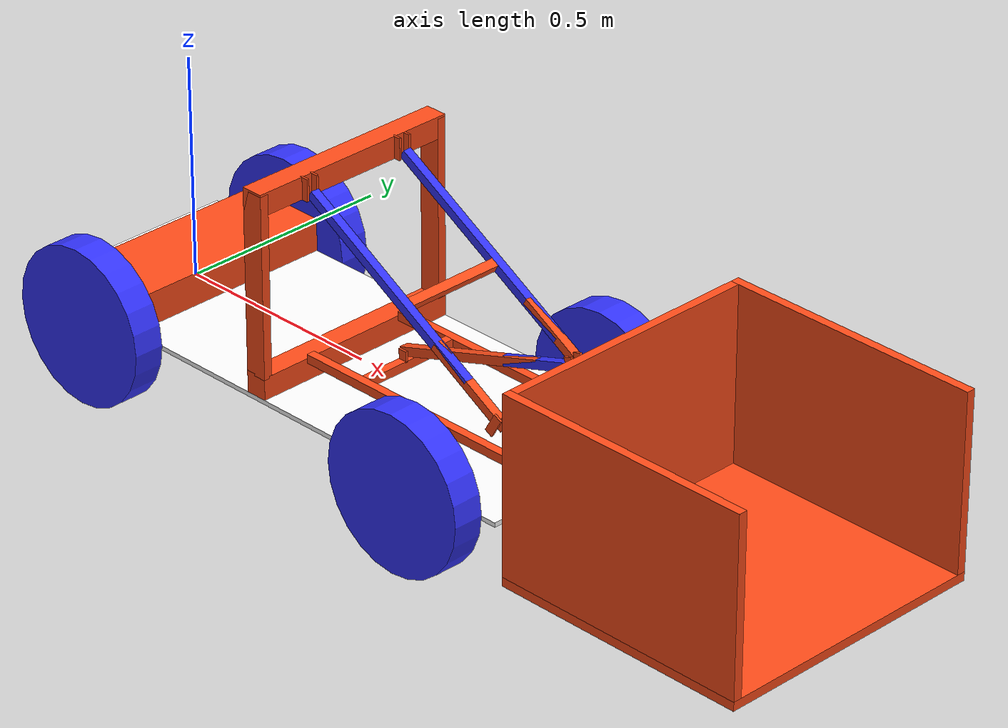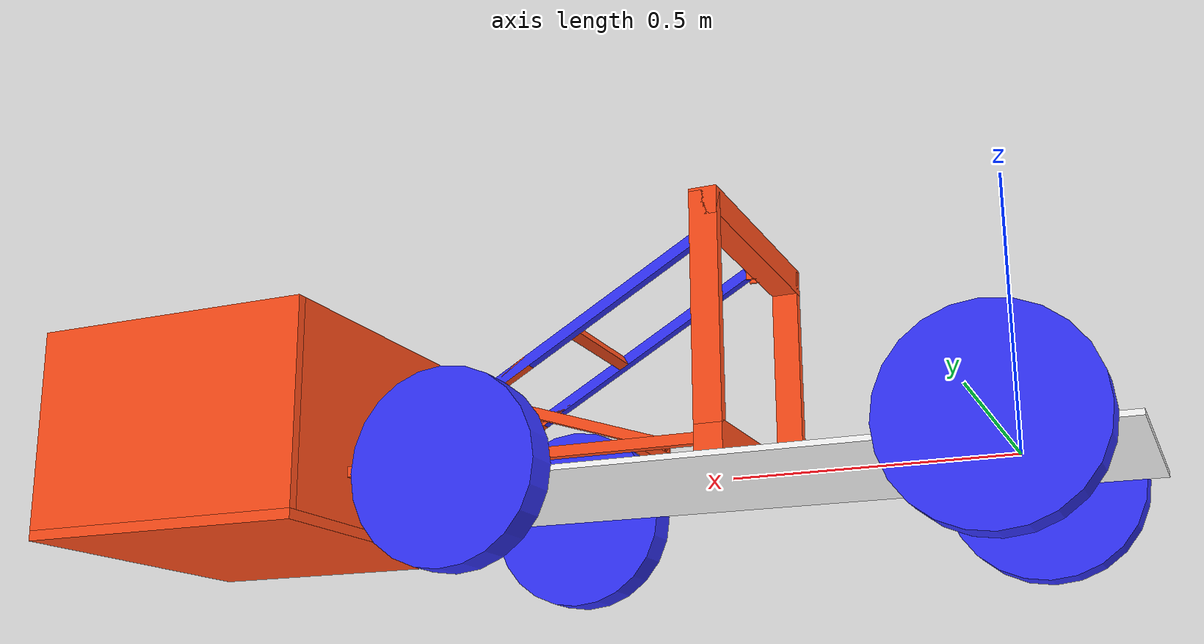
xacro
<?xml version="1.0"?>
<robot xmlns:xacro="http://www.ros.org/wiki/xacro"  name="robot">

    <xacro:include filename="robot_core.xacro" />
    <xacro:include filename="brackets.xacro" />
    <xacro:include filename="lifting_actuation.xacro" />
    <xacro:include filename="tilting_actuation.xacro" />

    <xacro:include filename="gazebo_control.xacro" />
    <!-- xacro:include filename="depth_camera.xacro" -->

</robot>

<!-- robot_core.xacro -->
<robot xmlns:xacro="http://www.ros.org/wiki/xacro" >

    <xacro:include filename="inertial_macros.xacro"/>

    <xacro:property name="chassis_length" value="1.35" />
    <xacro:property name="chassis_width" value="0.5" />
    <xacro:property name="chassis_height" value="0.01" />
    <xacro:property name="chassis_mass" value="1.0" />
    <xacro:property name="wheel_radius" value="0.1778" />
    <xacro:property name="wheel_thickness" value="0.07" />
    <xacro:property name="wheel_mass" value="0.05" />
    <xacro:property name="wheel_offset_x" value="0.2135" />
    <xacro:property name="wheel_offset_y" value="0.285" />
    <xacro:property name="wheel_offset_z" value="0.01" />
    <xacro:property name="caster_wheel_radius" value="0.1778"/>
    <xacro:property name="caster_wheel_mass" value="0.01"/>
    <xacro:property name="caster_wheel_offset_x" value="1.1365" />

    <material name="white">
        <color rgba="1 1 1 1" />
    </material>

    <material name="orange">
        <color rgba="1 0.3 0.1 1"/>
    </material>

    <material name="blue">
        <color rgba="0.2 0.2 1 1"/>
    </material>

    <material name="black">
        <color rgba="0 0 0 1"/>
    </material>

    <material name="red">
        <color rgba="1 0 0 1"/>
    </material>

    <!-- BASE LINK -->

    <link name="base_link">

    </link>

    <!-- BASE_FOOTPRINT LINK -->

    <joint name="base_footprint_joint" type="fixed">
    	<parent link="base_link"/>
    	<child link="base_footprint"/>
    	<origin xyz="0 0 0" rpy="0 0 0"/>
    </joint>

    <link name="base_footprint">
    </link>

    <!-- CHASSIS LINK -->

    <joint name="chassis_joint" type="fixed">
        <parent link="base_link"/>
        <child link="chassis"/>
        <origin xyz="${-wheel_offset_x} 0 ${-wheel_offset_z}"/>
    </joint>

    <link name="chassis">
        <visual>
            <origin xyz="${chassis_length/2} 0 ${chassis_height/2}"/>
            <geometry>
                <box size="${chassis_length} ${chassis_width} ${chassis_height}"/>
            </geometry>
            <material name="white"/>
        </visual>
        <collision>
            <origin xyz="${chassis_length/2} 0 ${chassis_height/2}"/>
            <geometry>
                <box size="${chassis_length} ${chassis_width} ${chassis_height}"/>
            </geometry>
        </collision>
        <xacro:inertial_box mass="0.5" x="${chassis_length}" y="${chassis_width}" z="${chassis_height}">
            <origin xyz="${chassis_length/2} 0 ${chassis_height/2}" rpy="0 0 0"/>
        </xacro:inertial_box>
    </link>

    <gazebo reference="chassis">
        <material>Gazebo/White</material>
    </gazebo>

    <!-- BACK LEFT WHEEL LINK -->

    <joint name="left_wheel_joint" type="continuous">
        <parent link="base_link"/>
        <child link="left_wheel"/>
        <origin xyz="0  ${wheel_offset_y} 0" rpy="-${pi/2} 0 0" />
        <axis xyz="0 0 1"/>
    </joint>

    <link name="left_wheel">
        <visual>
            <geometry>
                <cylinder radius="${wheel_radius}" length="0.07"/>
            </geometry>
            <material name="blue"/>
        </visual>
        <collision>
            <geometry>
                <sphere radius="${wheel_radius}"/>
            </geometry>
        </collision>
        <xacro:inertial_cylinder mass="${wheel_mass}" length="${wheel_thickness}" radius="${wheel_radius}">
            <origin xyz="0 0 0" rpy="0 0 0"/>
        </xacro:inertial_cylinder>
    </link>

    <gazebo reference="left_wheel">
        <material>Gazebo/Blue</material>
    </gazebo>

    <!-- BACK RIGHT WHEEL LINK -->

    <joint name="right_wheel_joint" type="continuous">
        <parent link="base_link"/>
        <child link="right_wheel"/>
        <origin xyz="0 ${-wheel_offset_y} 0" rpy="${pi/2} 0 0" />
        <axis xyz="0 0 -1"/>
    </joint>

    <link name="right_wheel">
        <visual>
            <geometry>
                <cylinder radius="${wheel_radius}" length="${wheel_thickness}"/>
            </geometry>
            <material name="blue"/>
        </visual>
        <collision>
            <geometry>
                <sphere radius="${wheel_radius}"/>
            </geometry>
        </collision>
        <xacro:inertial_cylinder mass="${wheel_mass}" length="${wheel_thickness}" radius="${wheel_radius}">
            <origin xyz="0 0 0" rpy="0 0 0"/>
        </xacro:inertial_cylinder>
    </link>

    <gazebo reference="right_wheel">
        <material>Gazebo/Blue</material>
    </gazebo>

    <!-- FRONT LEFT WHEEL LINK -->

    <joint name="front_left_wheel_joint" type="fixed">
        <parent link="chassis"/>
        <child link="front_left_wheel"/>
        <origin xyz="${caster_wheel_offset_x} ${wheel_offset_y} ${wheel_offset_z}" rpy="-${pi/2} 0 0" />
        <axis xyz="0 0 1"/>
    </joint>

    <link name="front_left_wheel">
        <visual>
            <geometry>
                <cylinder radius="${caster_wheel_radius}" length="${wheel_thickness}"/>
            </geometry>
            <material name="blue"/>
        </visual>
        <collision>
            <geometry>
                <sphere radius="${caster_wheel_radius}"/>
            </geometry>
        </collision>
        <xacro:inertial_cylinder mass="${caster_wheel_mass}" length="${wheel_thickness}" radius="${caster_wheel_radius}">
            <origin xyz="0 0 0" rpy="0 0 0"/>
        </xacro:inertial_cylinder>
    </link>

    <gazebo reference="front_left_wheel">
        <material>Gazebo/Blue</material>
        <mu1 value="0.001"/>
        <mu2 value="0.001"/>
    </gazebo>

    <!-- FRONT RIGHT WHEEL LINK -->

    <joint name="front_right_wheel_joint" type="fixed">
        <parent link="chassis"/>
        <child link="front_right_wheel"/>
        <origin xyz="${caster_wheel_offset_x} ${-wheel_offset_y} ${wheel_offset_z}" rpy="${pi/2} 0 0" />
        <axis xyz="0 0 -1"/>
    </joint>

    <link name="front_right_wheel">
        <visual>
            <geometry>
                <cylinder radius="${caster_wheel_radius}" length="${wheel_thickness}"/>
            </geometry>
            <material name="blue"/>
        </visual>
        <collision>
            <geometry>
                <sphere radius="${caster_wheel_radius}"/>
            </geometry>
        </collision>
        <xacro:inertial_cylinder mass="${caster_wheel_mass}" length="${wheel_thickness}" radius="${caster_wheel_radius}">
            <origin xyz="0 0 0" rpy="0 0 0"/>
        </xacro:inertial_cylinder>
    </link>

    <gazebo reference="front_right_wheel">
        <material>Gazebo/Blue</material>
        <mu1 value="0.001"/>
        <mu2 value="0.001"/>
    </gazebo>

    <!-- TOWER -->
    <!-- Needs to be 0.510m tall -->

    <joint name="tower" type="fixed">
        <parent link="base_link"/>
        <child link="tower"/>
        <origin xyz="0.4615 0 0"/>
    </joint>

    <link name="tower">
        <visual>
            <origin xyz="0 0 0.025"/>
            <geometry>
                <box size="0.05 0.5 0.05"/>
            </geometry>
            <material name="orange"/>
        </visual>
        <collision>
            <origin xyz="0 0 0.025"/>
            <geometry>
                <box size="0.05 0.5 0.05"/>
            </geometry>
        </collision>
        <xacro:inertial_box mass="0.5" x="0.05" y="0.5" z="0.05">
            <origin xyz="0 0 0.025" rpy="0 0 0"/>
        </xacro:inertial_box>
    </link>

    <gazebo reference="tower">
        <material>Gazebo/White</material>
    </gazebo>

    <!-- MOTOR AND GEARBOX LINK -->

    <joint name="motor_joint" type="fixed">
        <parent link="base_link"/>
        <child link="motor"/>
        <origin xyz="0 0 0"/>
    </joint>

    <link name="motor">
        <visual>
            <origin xyz="0 0 0.0375"/>
            <geometry>
                <box size="0.2 0.5 0.075"/>
            </geometry>
            <material name="orange"/>
        </visual>
        <collision>
            <origin xyz="0 0 0.0375"/>
            <geometry>
                <box size="0.2 0.5 0.075"/>
            </geometry>
        </collision>
        <xacro:inertial_box mass="1.5" x="0.2" y="0.5" z="0.075">
            <origin xyz="0 0 0.0375" rpy="0 0 0"/>
        </xacro:inertial_box>
    </link>

    <gazebo reference="motor">
        <material>Gazebo/Orange</material>
    </gazebo>

    <!-- TOWER HEIGHT LEFT -->
    <!-- Needs to be 0.510m tall -->

    <joint name="tower_up_left" type="fixed">
        <parent link="base_link"/>
        <child link="tower_up_left"/>
        <origin xyz="0.4615 0 0"/>
    </joint>

    <link name="tower_up_left">
        <visual>
            <origin xyz="0 -0.24 0.25"/>
            <geometry>
                <box size="0.05 0.02 0.410"/>
            </geometry>
            <material name="orange"/>
        </visual>
        <collision>
            <origin xyz="0 -0.24 0.25"/>
            <geometry>
                <box size="0.05 0.02 0.410"/>
            </geometry>
        </collision>
        <xacro:inertial_box mass="0.5" x="0.05" y="0.02" z="0.410">
            <origin xyz="0 -0.24 0.25" rpy="0 0 0"/>
        </xacro:inertial_box>
    </link>

    <!-- TOWER HEIGHT RIGHT-->
    <!-- Needs to be 0.510m tall -->

    <joint name="tower_up_right" type="fixed">
        <parent link="base_link"/>
        <child link="tower_up_right"/>
        <origin xyz="0.4615 0 0"/>
    </joint>

    <link name="tower_up_right">
        <visual>
            <origin xyz="0 0.24 0.25"/>
            <geometry>
                <box size="0.05 0.02 0.410"/>
            </geometry>
            <material name="orange"/>
        </visual>
        <collision>
            <origin xyz="0 0.24 0.25"/>
            <geometry>
                <box size="0.05 0.02 0.410"/>
            </geometry>
        </collision>
        <xacro:inertial_box mass="0.5" x="0.05" y="0.02" z="0.410">
            <origin xyz="0 0.24 0.25" rpy="0 0 0"/>
        </xacro:inertial_box>
    </link>

    <!-- TOWER TOP -->
    <!-- Needs to be 0.510m tall -->

    <joint name="tower_top" type="fixed">
        <parent link="base_link"/>
        <child link="tower_top"/>
        <origin xyz="0.4615 0 0"/>
    </joint>

    <link name="tower_top">
        <visual>
            <origin xyz="0 0 0.435"/>
            <geometry>
                <box size="0.05 0.5 0.05"/>
            </geometry>
            <material name="orange"/>
        </visual>
        <collision>
            <origin xyz="0 0 0.435"/>
            <geometry>
                <box size="0.05 0.5 0.05"/>
            </geometry>
        </collision>
        <xacro:inertial_box mass="0.5" x="0.05" y="0.5" z="0.05">
            <origin xyz="0 0 0.435" rpy="0 0 0"/>
        </xacro:inertial_box>
    </link>

</robot>

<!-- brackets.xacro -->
<robot xmlns:xacro="http://www.ros.org/wiki/xacro" >

    <xacro:include filename="inertial_macros.xacro"/>

    <!-- ANGLING BRACKETS -->
    <!-- SET 1 -->
    <joint name="tower_left_bracket" type="fixed">
        <parent link="tower_top"/>
        <child link="tower_top_left"/>
        <origin xyz="0.03 0.1375 0.435"/>
    </joint>

    <link name="tower_top_left">
        <visual>
            <origin xyz="0 0 0"/>
            <geometry>
                <box size="0.02 0.005 0.05"/>
            </geometry>
            <material name="orange"/>
        </visual>
        <collision>
            <origin xyz="0 0 0"/>
            <geometry>
                <box size="0.02 0.005 0.05"/>
            </geometry>
        </collision>
        <xacro:inertial_box mass="0.5" x="0.02" y="0.005" z="0.05">
            <origin xyz="0 0 0" rpy="0 0 0"/>
        </xacro:inertial_box>
    </link>

    <gazebo reference="tower_left_bracket">
        <material>Gazebo/Orange</material>
    </gazebo>

    <joint name="tower_right_bracket" type="fixed">
        <parent link="tower_top"/>
        <child link="tower_top_right"/>
        <origin xyz="0.03 0.1125 0.435"/>
    </joint>

    <link name="tower_top_right">
        <visual>
            <origin xyz="0 0 0"/>
            <geometry>
                <box size="0.02 0.005 0.05"/>
            </geometry>
            <material name="orange"/>
        </visual>
        <collision>
            <origin xyz="0 0 0"/>
            <geometry>
                <box size="0.02 0.005 0.05"/>
            </geometry>
        </collision>
        <xacro:inertial_box mass="0.5" x="0.02" y="0.005" z="0.05">
            <origin xyz="0 0 0" rpy="0 0 0"/>
        </xacro:inertial_box>
    </link>
    <gazebo reference="tower_right_bracket">
        <material>Gazebo/Orange</material>
    </gazebo>

    <!-- SET 2 -->
    <joint name="tower_left_bracket2" type="fixed">
        <parent link="tower_top"/>
        <child link="tower_top_left2"/>
        <origin xyz="0.03 -0.1375 0.435"/>
    </joint>

    <link name="tower_top_left2">
        <visual>
            <origin xyz="0 0 0"/>
            <geometry>
                <box size="0.02 0.005 0.05"/>
            </geometry>
            <material name="orange"/>
        </visual>
        <collision>
            <origin xyz="0 0 0"/>
            <geometry>
                <box size="0.02 0.005 0.05"/>
            </geometry>
        </collision>
        <xacro:inertial_box mass="0.5" x="0.02" y="0.005" z="0.05">
            <origin xyz="0 0 0" rpy="0 0 0"/>
        </xacro:inertial_box>
    </link>
    <gazebo reference="tower_left_bracket2">
        <material>Gazebo/Orange</material>
    </gazebo>

    <joint name="tower_right_bracket2" type="fixed">
        <parent link="tower_top"/>
        <child link="tower_top_right2"/>
        <origin xyz="0.03 -0.1125 0.435"/>
    </joint>

    <link name="tower_top_right2">
        <visual>
            <origin xyz="0 0 0"/>
            <geometry>
                <box size="0.02 0.005 0.05"/>
            </geometry>
            <material name="orange"/>
        </visual>
        <collision>
            <origin xyz="0 0 0"/>
            <geometry>
                <box size="0.02 0.005 0.05"/>
            </geometry>
        </collision>
        <xacro:inertial_box mass="0.5" x="0.02" y="0.005" z="0.05">
            <origin xyz="0 0 0" rpy="0 0 0"/>
        </xacro:inertial_box>
    </link>

    <gazebo reference="tower_right_bracket2">
        <material>Gazebo/Orange</material>
    </gazebo>

    <!-- ANGLING BRACKETS -->
    <!-- SET 3 -->
    <joint name="act_left_bracket" type="fixed">
        <parent link="lifting_left_link"/>
        <child link="act_left"/>
        <origin xyz="0.1 0.0125 -0.0055"/>
    </joint>

    <link name="act_left">
        <visual>
            <origin xyz="0 0 0"/>
            <geometry>
                <box size="0.02 0.005 0.05"/>
            </geometry>
            <material name="orange"/>
        </visual>
        <collision>
            <origin xyz="0 0 0"/>
            <geometry>
                <box size="0.02 0.005 0.05"/>
            </geometry>
        </collision>
        <xacro:inertial_box mass="0.5" x="0.02" y="0.005" z="0.05">
            <origin xyz="0 0 0" rpy="0 0 0"/>
        </xacro:inertial_box>
    </link>

    <gazebo reference="act_left_bracket">
        <material>Gazebo/Orange</material>
    </gazebo>

    <joint name="act_right_bracket" type="fixed">
        <parent link="lifting_left_link"/>
        <child link="act_right"/>
        <origin xyz="0.1 -0.0125 -0.0055"/>
    </joint>

    <link name="act_right">
        <visual>
            <origin xyz="0 0 0"/>
            <geometry>
                <box size="0.02 0.005 0.05"/>
            </geometry>
            <material name="orange"/>
        </visual>
        <collision>
            <origin xyz="0 0 0"/>
            <geometry>
                <box size="0.02 0.005 0.05"/>
            </geometry>
        </collision>
        <xacro:inertial_box mass="0.5" x="0.02" y="0.005" z="0.05">
            <origin xyz="0 0 0" rpy="0 0 0"/>
        </xacro:inertial_box>
    </link>
    <gazebo reference="act_right_bracket">
        <material>Gazebo/Orange</material>
    </gazebo>

    <!-- SET 4 -->
    <joint name="act_left_bracket2" type="fixed">
        <parent link="lifting_right_link"/>
        <child link="act_left2"/>
        <origin xyz="0.1 0.0125 -0.0055"/>
    </joint>

    <link name="act_left2">
        <visual>
            <origin xyz="0 0 0"/>
            <geometry>
                <box size="0.02 0.005 0.05"/>
            </geometry>
            <material name="orange"/>
        </visual>
        <collision>
            <origin xyz="0 0 0"/>
            <geometry>
                <box size="0.02 0.005 0.05"/>
            </geometry>
        </collision>
        <xacro:inertial_box mass="0.5" x="0.02" y="0.005" z="0.05">
            <origin xyz="0 0 0" rpy="0 0 0"/>
        </xacro:inertial_box>
    </link>
    <gazebo reference="act_left_bracket2">
        <material>Gazebo/Orange</material>
    </gazebo>

    <joint name="act_right_bracket2" type="fixed">
        <parent link="lifting_right_link"/>
        <child link="act_right2"/>
        <origin xyz="0.1 -0.0125 -0.0055"/>
    </joint>

    <link name="act_right2">
        <visual>
            <origin xyz="0 0 0"/>
            <geometry>
                <box size="0.02 0.005 0.05"/>
            </geometry>
            <material name="orange"/>
        </visual>
        <collision>
            <origin xyz="0 0 0"/>
            <geometry>
                <box size="0.02 0.005 0.05"/>
            </geometry>
        </collision>
        <xacro:inertial_box mass="0.5" x="0.02" y="0.005" z="0.05">
            <origin xyz="0 0 0" rpy="0 0 0"/>
        </xacro:inertial_box>
    </link>

    <gazebo reference="act_right_bracket2">
        <material>Gazebo/Orange</material>
    </gazebo>

    <!-- ANGLING BRACKETS -->
    <!-- SET 5 -->
    <joint name="bottom_left_bracket" type="fixed">
        <parent link="arm_link"/>
        <child link="bottom_left"/>
        <origin xyz="0 0.0125 0.02"/>
    </joint>

    <link name="bottom_left">
        <visual>
            <origin xyz="0 0 0"/>
            <geometry>
                <box size="0.02 0.005 0.025"/>
            </geometry>
            <material name="orange"/>
        </visual>
        <collision>
            <origin xyz="0 0 0"/>
            <geometry>
                <box size="0.02 0.005 0.025"/>
            </geometry>
        </collision>
        <xacro:inertial_box mass="0.5" x="0.02" y="0.005" z="0.025">
            <origin xyz="0 0 0" rpy="0 0 0"/>
        </xacro:inertial_box>
    </link>

    <gazebo reference="bottom_left_bracket">
        <material>Gazebo/Orange</material>
    </gazebo>

    <joint name="bottom_right_bracket" type="fixed">
        <parent link="arm_link"/>
        <child link="bottom_right"/>
        <origin xyz="0 -0.0125 0.02"/>
    </joint>

    <link name="bottom_right">
        <visual>
            <origin xyz="0 0 0"/>
            <geometry>
                <box size="0.02 0.005 0.025"/>
            </geometry>
            <material name="orange"/>
        </visual>
        <collision>
            <origin xyz="0 0 0"/>
            <geometry>
                <box size="0.02 0.005 0.025"/>
            </geometry>
        </collision>
        <xacro:inertial_box mass="0.5" x="0.02" y="0.005" z="0.025">
            <origin xyz="0 0 0" rpy="0 0 0"/>
        </xacro:inertial_box>
    </link>

    <gazebo reference="bottom_right_bracket">
        <material>Gazebo/Orange</material>
    </gazebo>

    <!-- SET 6 -->
    <joint name="tilt_left_bracket" type="fixed">
        <parent link="tilting_link"/>
        <child link="tilt_left"/>
        <origin xyz="0.1 0.0125 0"/>
    </joint>

    <link name="tilt_left">
        <visual>
            <origin xyz="0 0 0"/>
            <geometry>
                <box size="0.02 0.005 0.05"/>
            </geometry>
            <material name="orange"/>
        </visual>
        <collision>
            <origin xyz="0 0 0"/>
            <geometry>
                <box size="0.02 0.005 0.05"/>
            </geometry>
        </collision>
        <xacro:inertial_box mass="0.5" x="0.02" y="0.005" z="0.05">
            <origin xyz="0 0 0" rpy="0 0 0"/>
        </xacro:inertial_box>
    </link>
    <gazebo reference="tilt_left">
        <material>Gazebo/Orange</material>
    </gazebo>

    <joint name="tilt_right_bracket" type="fixed">
        <parent link="tilting_link"/>
        <child link="tilt_right"/>
        <origin xyz="0.1 -0.0125 0"/>
    </joint>

    <link name="tilt_right">
        <visual>
            <origin xyz="0 0 0"/>
            <geometry>
                <box size="0.02 0.005 0.05"/>
            </geometry>
            <material name="orange"/>
        </visual>
        <collision>
            <origin xyz="0 0 0"/>
            <geometry>
                <box size="0.02 0.005 0.05"/>
            </geometry>
        </collision>
        <xacro:inertial_box mass="0.5" x="0.02" y="0.005" z="0.05">
            <origin xyz="0 0 0" rpy="0 0 0"/>
        </xacro:inertial_box>
    </link>

    <gazebo reference="tilt_right">
        <material>Gazebo/Orange</material>
    </gazebo>

</robot>

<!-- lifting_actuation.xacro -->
<robot xmlns:xacro="http://www.ros.org/wiki/xacro" >

    <xacro:include filename="inertial_macros.xacro"/>

    <!-- LIFTING ACTUATOR LEFT -->
    <xacro:property name="actuator_fixed_length" value="0.5" />
    <xacro:property name="actuator_extension_length" value="0.2" />
    <xacro:property name="actuator_radius" value="0.02" />

    <!-- FIXED PART -->
    <joint name="actuator_left_joint" type="fixed">
        <parent link="left_arm_link"/>
        <child link="actuator_left"/>
        <origin xyz="0.2325 0.125 0.25" rpy="0 ${pi/6} 0"/>
        <axis xyz="1 0 0"/>
    </joint>

    <link name="actuator_left">
        <visual>
            <origin xyz="0 0 0"/>
            <geometry>
                <box size="${actuator_fixed_length} ${actuator_radius} ${actuator_radius}"/>
            </geometry>
            <material name="blue"/>
        </visual>
        <collision>
            <origin xyz="0 0 0"/>
            <geometry>
                <box size="${actuator_fixed_length} ${actuator_radius} ${actuator_radius}"/>
            </geometry>
        </collision>
        <xacro:inertial_box mass="1.5" x="${actuator_fixed_length}" y="${actuator_radius}" z="${actuator_radius}">
            <origin xyz="0 0 0" rpy="0 0 0"/>
        </xacro:inertial_box>
    </link>

    <gazebo reference="actuator_left">
        <material>Gazebo/Blue</material>
    </gazebo>

    <!-- MOVING PART -->
    <joint name="lifting_left_joint" type="prismatic">
        <parent link="actuator_left"/>
        <child link="lifting_left_link"/>
        <origin xyz="0 0 0" rpy="0 0 0"/>
        <axis xyz="1 0 0"/>
        <limit lower="0.15" upper="0.35" velocity="100" effort="100"/>
    </joint>

    <link name="lifting_left_link">
        <visual>
            <origin xyz="0 0 0"/>
            <geometry>
                <box size="${actuator_extension_length} ${actuator_radius} ${actuator_radius}"/>
            </geometry>
            <material name="orange"/>
        </visual>
        <collision>
            <origin xyz="0 0 0"/>
            <geometry>
                <box size="${actuator_extension_length} ${actuator_radius} ${actuator_radius}"/>
            </geometry>
        </collision>
        <xacro:inertial_box mass="0.2" x="${actuator_extension_length}" y="${actuator_radius}" z="${actuator_radius}">
            <origin xyz="0 0 0" rpy="0 0 0"/>
        </xacro:inertial_box>
    </link>

    <gazebo reference="lifting_left_link">
        <material>Gazebo/Orange</material>
    </gazebo>

    <!-- LIFTING ACTUATOR RIGHT -->

    <!-- FIXED PART -->
    <joint name="actuator_right_joint" type="fixed">
        <parent link="left_arm_link"/>
        <child link="actuator_right"/>
        <origin xyz="0.2325 -0.125 0.25" rpy="0 ${pi/6} 0"/>
        <axis xyz="1 0 0"/>
    </joint>

    <link name="actuator_right">
        <visual>
            <origin xyz="0 0 0"/>
            <geometry>
                <box size="${actuator_fixed_length} ${actuator_radius} ${actuator_radius}"/>
            </geometry>
            <material name="blue"/>
        </visual>
        <collision>
            <origin xyz="0 0 0"/>
            <geometry>
                <box size="${actuator_fixed_length} ${actuator_radius} ${actuator_radius}"/>
            </geometry>
        </collision>
        <xacro:inertial_box mass="0.2" x="${actuator_fixed_length}" y="${actuator_radius}" z="${actuator_radius}">
            <origin xyz="0 0 0" rpy="0 0 0"/>
        </xacro:inertial_box>
    </link>

    <gazebo reference="actuator_right">
        <material>Gazebo/Blue</material>
    </gazebo>

    <!-- CONNECTOR -->
    <joint name="connecting_joint" type="fixed">
        <parent link="lifting_left_link"/>
        <child link="connecting_link"/>
        <origin xyz="-0.2 -0.125 0"/>
    </joint>

    <link name="connecting_link">
        <visual>
            <origin xyz="0 0 0"/>
            <geometry>
                <box size="0.02 0.23 0.02"/>
            </geometry>
            <material name="orange"/>
        </visual>
        <collision>
            <origin xyz="0 0 0"/>
            <geometry>
                <box size="0.02 0.23 0.02"/>
            </geometry>
        </collision>
        <xacro:inertial_box mass="0.2" x="0.02" y="0.23" z="0.02">
            <origin xyz="0 0 0" rpy="0 0 0"/>
        </xacro:inertial_box>
    </link>

    <gazebo reference="connecting_link">
        <material>Gazebo/Orange</material>
    </gazebo>

    <!-- MOVING PART -->
    <joint name="lifting_right_joint" type="fixed">
        <parent link="connecting_link"/>
        <child link="lifting_right_link"/>
        <origin xyz="0.2 -0.125 0" rpy="0 0 0"/>
        <axis xyz="1 0 0"/>
    </joint>

    <link name="lifting_right_link">
        <visual>
            <origin xyz="0 0 0"/>
            <geometry>
                <box size="${actuator_extension_length} 0.02 0.02"/>
            </geometry>
            <material name="orange"/>
        </visual>
        <collision>
            <origin xyz="0 0 0"/>
            <geometry>
                <box size="${actuator_extension_length} 0.02 0.02"/>
            </geometry>
        </collision>
        <xacro:inertial_box mass="0.2" x="${actuator_extension_length}" y="0.02" z="0.02">
            <origin xyz="0 0 0" rpy="0 0 0"/>
        </xacro:inertial_box>
    </link>

    <gazebo reference="lifting_right_link">
        <material>Gazebo/Orange</material>
    </gazebo>

    <!-- LEFT ARM JOINT -->
    <!-- arm_joint describes the rotation of the arm and is centred around the top corner of the slider box. -->
    <!-- - The axis of rotation is -1 in Y, so that positive is "up" -->
    <!-- - The upper limit uses xacro's mathematical features -->
    <joint name="left_arm_joint" type="revolute">
        <origin xyz="0.025 0 0.05" rpy="0 0 0"/>
        <parent link="tower"/>
        <child link="left_arm_link"/>
        <axis xyz="0 -1 0"/>
        <limit lower="0" upper="${pi/4}" velocity="50" effort="100"/>
    </joint>

    <!-- arm_link describes the arm -->
    <!-- - We use the "property" feature to define the arm length and radius and use them multiple times -->
    <!-- - The visual/collision origin is set to halfway along the length (similar to the box), but also with a rotation (again using the mathematical features). -->
    <!--   This is because the cylinder extends along the Z axis by default, but we want it to be along the X axis (when the joint is at 0) -->

    <xacro:property name="arm_length" value="0.75" />
    <xacro:property name="arm_radius" value="0.02" />
    <link name="left_arm_link">
        <visual>
            <origin xyz="${arm_length/2} -0.125 0"/>
            <geometry>
                <box size="${arm_length} ${arm_radius} ${arm_radius}" />
            </geometry>
            <material name="orange" />
        </visual>
        <collision>
            <origin xyz="${arm_length/2} -0.125 0"/>
            <geometry>
                <box size="${arm_length} ${arm_radius} ${arm_radius}" />
            </geometry>
        </collision>
        <xacro:inertial_box mass="0.075" x="${arm_length}" y="${arm_radius}" z="${arm_radius}">
            <origin xyz="${arm_length/2} -0.125 0"/>
        </xacro:inertial_box>
    </link>

    <gazebo reference="left_arm_link">
        <material>Gazebo/Blue</material>
    </gazebo>

    <!-- ARM CONNECTING LINK -->

    <joint name="arm_joint" type="fixed">
        <parent link="left_arm_link"/>
        <child link="arm_link"/>
        <origin xyz="0.15 0 0"/>
    </joint>

    <link name="arm_link">
        <visual>
            <origin xyz="0 0 0"/>
            <geometry>
                <box size="${arm_radius} 0.23 ${arm_radius}"/>
            </geometry>
            <material name="orange"/>
        </visual>
        <collision>
            <origin xyz="0 0 0"/>
            <geometry>
                <box size="${arm_radius} 0.23 ${arm_radius}"/>
            </geometry>
        </collision>
        <xacro:inertial_box mass="0.1" x="${arm_radius}" y="0.23" z="${arm_radius}">
            <origin xyz="0 0 0" rpy="0 0 0"/>
        </xacro:inertial_box>
    </link>

    <gazebo reference="arm">
        <material>Gazebo/Orange</material>
    </gazebo>

    <!-- DOZER LINK -->

    <joint name="dozer_joint" type="fixed">
        <parent link="left_arm_link"/>
        <child link="dozer"/>
        <origin xyz="0.65 0 0.2"/>
    </joint>

    <link name="dozer">
        <visual>
            <origin xyz="0.1 0 -0.1"/>
            <geometry>
                <box size="0.02 0.6 0.4"/>
            </geometry>
            <material name="orange"/>
        </visual>
        <collision>
            <origin xyz="0.1 0 -0.1"/>
            <geometry>
                <box size="0.02 0.6 0.4"/>
            </geometry>
        </collision>
        <xacro:inertial_box mass="0.1" x="0.02" y="0.6" z="0.4">
            <origin xyz="0.1 0 -0.1" rpy="0 0 0"/>
        </xacro:inertial_box>
    </link>

    <gazebo reference="dozer">
        <material>Gazebo/Orange</material>
    </gazebo>

    <joint name="dozer_left" type="fixed">
        <parent link="dozer"/>
        <child link="dozer_left"/>
        <origin xyz="0.29 -0.31 0"/>
    </joint>

    <link name="dozer_left">
        <visual>
            <origin xyz="0.1 0 -0.1"/>
            <geometry>
                <box size="0.6 0.02 0.4"/>
            </geometry>
            <material name="orange"/>
        </visual>
        <collision>
            <origin xyz="0.1 0 -0.1"/>
            <geometry>
                <box size="0.6 0.02 0.4"/>
            </geometry>
        </collision>
        <xacro:inertial_box mass="0.1" x="0.6" y="0.02" z="0.4">
            <origin xyz="0.1 0 -0.1" rpy="0 0 0"/>
        </xacro:inertial_box>
    </link>

    <gazebo reference="dozer_left">
        <material>Gazebo/Blue</material>
    </gazebo>

    <joint name="dozer_right" type="fixed">
        <parent link="dozer"/>
        <child link="dozer_right"/>
        <origin xyz="0.29 0.31 0"/>
    </joint>

    <link name="dozer_right">
        <visual>
            <origin xyz="0.1 0 -0.1"/>
            <geometry>
                <box size="0.6 0.02 0.4"/>
            </geometry>
            <material name="orange"/>
        </visual>
        <collision>
            <origin xyz="0.1 0 -0.1"/>
            <geometry>
                <box size="0.6 0.02 0.4"/>
            </geometry>
        </collision>
        <xacro:inertial_box mass="0.1" x="0.6" y="0.02" z="0.4">
            <origin xyz="0.1 0 -0.1" rpy="0 0 0"/>
        </xacro:inertial_box>
    </link>

    <gazebo reference="dozer_right">
        <material>Gazebo/Blue</material>
    </gazebo>

    <joint name="dozer_base" type="fixed">
        <parent link="dozer"/>
        <child link="dozer_base"/>
        <origin xyz="0.29 0 -0.21"/>
    </joint>

    <link name="dozer_base">
        <visual>
            <origin xyz="0.1 0 -0.1"/>
            <geometry>
                <box size="0.6 0.64 0.02"/>
            </geometry>
            <material name="orange"/>
        </visual>
        <collision>
            <origin xyz="0.1 0 -0.1"/>
            <geometry>
                <box size="0.6 0.64 0.4"/>
            </geometry>
        </collision>
        <xacro:inertial_box mass="0.1" x="0.6" y="0.64" z="0.4">
            <origin xyz="0.1 0 -0.1" rpy="0 0 0"/>
        </xacro:inertial_box>
    </link>

    <gazebo reference="dozer_base">
        <material>Gazebo/Blue</material>
    </gazebo>

    <!-- RIGHT ARM JOINT -->
    <!-- arm_joint describes the rotation of the arm and is centred around the top corner of the slider box. -->
    <!-- - The axis of rotation is -1 in Y, so that positive is "up" -->
    <!-- - The upper limit uses xacro's mathematical features -->
    <joint name="right_arm_joint" type="fixed">
        <origin xyz="0.225 0 0" rpy="0 0 0"/>
        <parent link="arm_link"/>
        <child link="right_arm_link"/>
        <axis xyz="0 -1 0"/>
    </joint>

    <!-- arm_link describes the arm -->
    <!-- - We use the "property" feature to define the arm length and radius and use them multiple times -->
    <!-- - The visual/collision origin is set to halfway along the length (similar to the box), but also with a rotation (again using the mathematical features). -->
    <!--   This is because the cylinder extends along the Z axis by default, but we want it to be along the X axis (when the joint is at 0) -->

    <xacro:property name="arm_length" value="0.75" />
    <xacro:property name="arm_radius" value="0.02" />
    <link name="right_arm_link">
        <visual>
            <origin xyz="0 0.125 0"/>
            <geometry>
                <box size="${arm_length} ${arm_radius} ${arm_radius}" />
            </geometry>
            <material name="orange" />
        </visual>
        <collision>
            <origin xyz="0 0.125 0"/>
            <geometry>
                <box size="${arm_length} ${arm_radius} ${arm_radius}"/>
            </geometry>
        </collision>
        <xacro:inertial_box mass="0.075" x="${arm_length}" y="${arm_radius}" z = "${arm_radius}">
            <origin xyz="0 0.125 0"/>
        </xacro:inertial_box>
    </link>

    <gazebo reference="right_arm_link">
        <material>Gazebo/Blue</material>
    </gazebo>

</robot>

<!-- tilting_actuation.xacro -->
<robot xmlns:xacro="http://www.ros.org/wiki/xacro" >

    <xacro:include filename="inertial_macros.xacro"/>

    <!-- TILTING JOINT -->
    <!-- FIXED PART -->
    <xacro:property name="tilting_fixed_length" value="0.4" />
    <xacro:property name="tilting_extension_length" value="0.2" />
    <xacro:property name="actuator_radius" value="0.02" />

    <joint name="tilting_fixed_joint" type="fixed">
        <origin xyz="0.1 0 0.06" rpy="0 ${-pi/10} 0"/>
        <parent link="arm_link"/>
        <child link="tilting_fixed_link"/>
        <axis xyz="1 0 0"/>
    </joint>

    <xacro:property name="tilting_length" value="0.6" />
    <xacro:property name="arm_radius" value="0.02" />
    <link name="tilting_fixed_link">
        <visual>
            <origin xyz="0.085 0 0"/>
            <geometry>
                <box size="${tilting_fixed_length} ${actuator_radius} ${actuator_radius}" />
            </geometry>
            <material name="orange" />
        </visual>
        <collision>
            <origin xyz="0.085 0 0"/>
            <geometry>
                <box size="${tilting_fixed_length} ${actuator_radius} ${actuator_radius}"/>
            </geometry>
        </collision>
        <xacro:inertial_box mass="0.075" x="${tilting_fixed_length}" y="${actuator_radius}" z = "${actuator_radius}">
            <origin xyz="0.085 0 0"/>
        </xacro:inertial_box>
    </link>

    <gazebo reference="tilting_fixed_link">
        <material>Gazebo/Blue</material>
    </gazebo>

    <!-- MOVING PART -->
    <joint name="tilting_joint" type="prismatic">
        <parent link="tilting_fixed_link"/>
        <child link="tilting_link"/>
        <origin xyz="0 0 0" rpy="0 0 0"/>
        <axis xyz="1 0 0"/>
        <limit lower="0.185" upper="0.385" velocity="100" effort="100"/>
    </joint>

    <link name="tilting_link">
        <visual>
            <origin xyz="0 0 0"/>
            <geometry>
                <box size="${tilting_extension_length} ${actuator_radius} ${actuator_radius}"/>
            </geometry>
            <material name="blue"/>
        </visual>
        <collision>
            <origin xyz="0 0 0"/>
            <geometry>
                <box size="${tilting_extension_length} ${actuator_radius} ${actuator_radius}"/>
            </geometry>
        </collision>
        <xacro:inertial_box mass="1.5" x="${tilting_extension_length}" y="${actuator_radius}" z="${actuator_radius}">
            <origin xyz="0 0 0" rpy="0 0 0"/>
        </xacro:inertial_box>
    </link>

    <gazebo reference="tilting_link">
        <material>Gazebo/Blue</material>
    </gazebo>

</robot>
